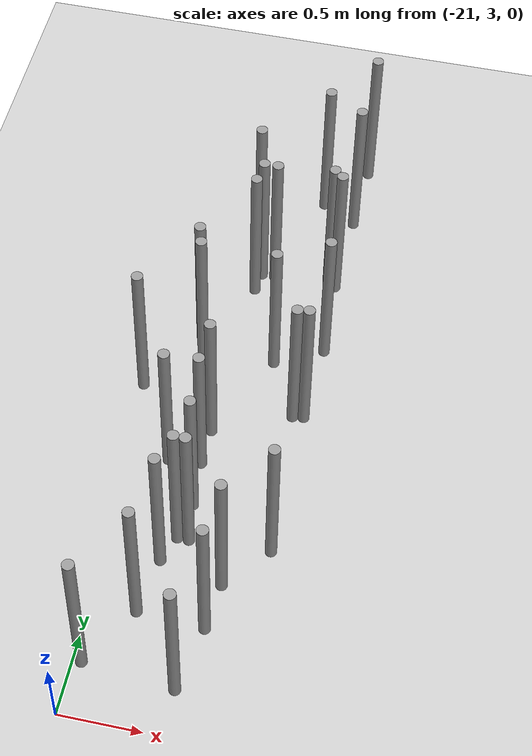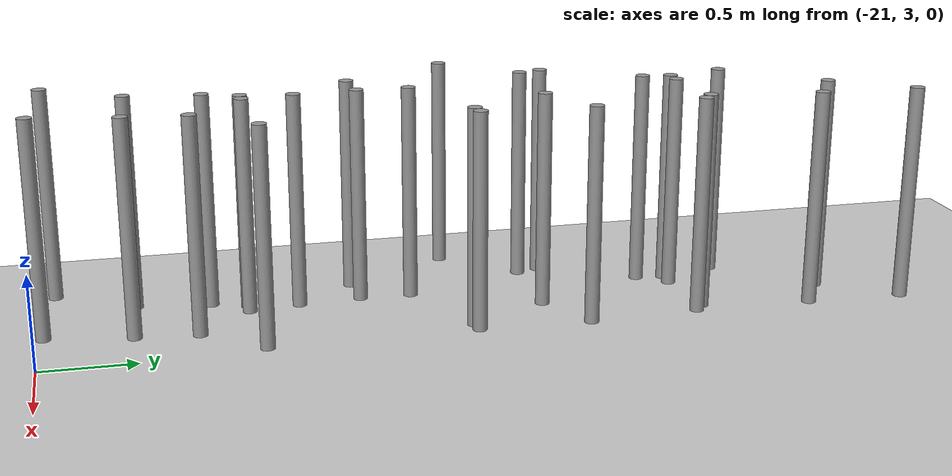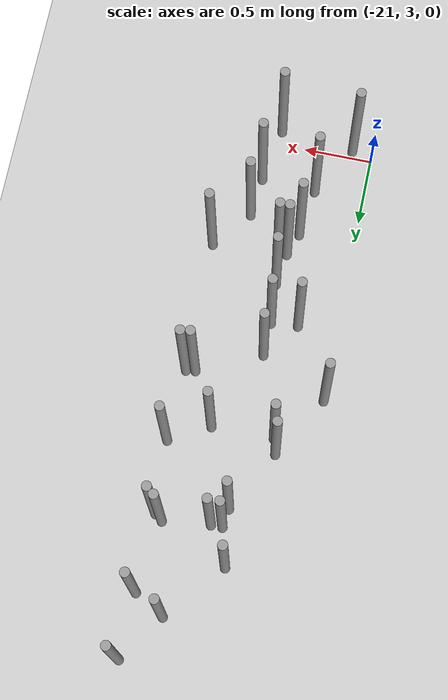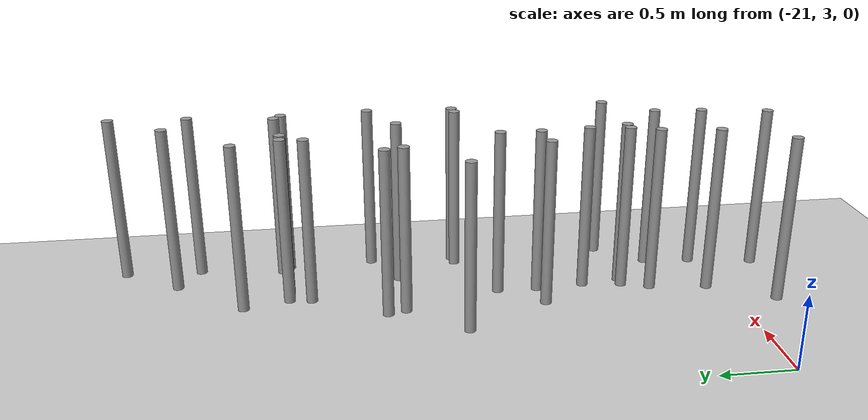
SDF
<sdf version="1.6">
 <world name="default">
  <model name="ground_plane">
   <static>1</static>
   <link name="link">
    <collision name="collision">
     <geometry><plane><normal>0 0 1</normal><size>100 100</size></plane></geometry>
     <surface><friction><ode><mu>100</mu><mu2>50</mu2></ode></friction></surface>
    </collision>
    <visual name="visual">
     <cast_shadows>0</cast_shadows>
     <geometry><plane><normal>0 0 1</normal><size>100 100</size></plane></geometry>
     <material>
      <script><uri>file://media/materials/scripts/gazebo.material</uri><name>Gazebo/Grey</name></script>
     </material>
    </visual>
   </link>
  </model>
  <model name="unit_cylinder_clone_1">
   <pose>-20.0156 6.54621 0.923528 7e-06 4e-06 0.003042</pose>
   <link name="link">
    <inertial>
     <mass>1</mass>
     <inertia><ixx>0.145833</ixx><ixy>0</ixy><ixz>0</ixz><iyy>0.145833</iyy><iyz>0</iyz><izz>0.125</izz></inertia>
    </inertial>
    <collision name="collision">
     <geometry><cylinder><radius>0.0331322</radius><length>1</length></cylinder></geometry>
    </collision>
    <visual name="visual">
     <geometry><cylinder><radius>0.0331322</radius><length>1</length></cylinder></geometry>
     <material>
      <script><name>Gazebo/Grey</name><uri>file://media/materials/scripts/gazebo.material</uri></script>
     </material>
    </visual>
   </link>
  </model>
  <model name="unit_cylinder_clone_3">
   <pose>-20 7.00001 0.923521 -7e-06 4e-06 0.008098</pose>
   <link name="link">
    <inertial>
     <mass>1</mass>
     <inertia><ixx>0.145833</ixx><ixy>0</ixy><ixz>0</ixz><iyy>0.145833</iyy><iyz>0</iyz><izz>0.125</izz></inertia>
    </inertial>
    <collision name="collision">
     <geometry><cylinder><radius>0.0331322</radius><length>1</length></cylinder></geometry>
    </collision>
    <visual name="visual">
     <geometry><cylinder><radius>0.0331322</radius><length>1</length></cylinder></geometry>
     <material>
      <script><name>Gazebo/Grey</name><uri>file://media/materials/scripts/gazebo.material</uri></script>
     </material>
    </visual>
   </link>
  </model>
  <model name="unit_cylinder_clone_4">
   <pose>-20.2258 6.6696 0.923529 -1e-06 2e-06 -0.005396</pose>
   <link name="link">
    <inertial>
     <mass>1</mass>
     <inertia><ixx>0.145833</ixx><ixy>0</ixy><ixz>0</ixz><iyy>0.145833</iyy><iyz>0</iyz><izz>0.125</izz></inertia>
    </inertial>
    <collision name="collision">
     <geometry><cylinder><radius>0.0331322</radius><length>1</length></cylinder></geometry>
    </collision>
    <visual name="visual">
     <geometry><cylinder><radius>0.0331322</radius><length>1</length></cylinder></geometry>
     <material>
      <script><name>Gazebo/Grey</name><uri>file://media/materials/scripts/gazebo.material</uri></script>
     </material>
    </visual>
   </link>
  </model>
  <model name="unit_cylinder_clone_5">
   <pose>-20.0826 6.03994 0.923523 -4e-06 -1e-06 -0.00611</pose>
   <link name="link">
    <inertial>
     <mass>1</mass>
     <inertia><ixx>0.145833</ixx><ixy>0</ixy><ixz>0</ixz><iyy>0.145833</iyy><iyz>0</iyz><izz>0.125</izz></inertia>
    </inertial>
    <collision name="collision">
     <geometry><cylinder><radius>0.0331322</radius><length>1</length></cylinder></geometry>
    </collision>
    <visual name="visual">
     <geometry><cylinder><radius>0.0331322</radius><length>1</length></cylinder></geometry>
     <material>
      <script><name>Gazebo/Grey</name><uri>file://media/materials/scripts/gazebo.material</uri></script>
     </material>
    </visual>
   </link>
  </model>
  <model name="unit_cylinder_clone_7">
   <pose>-20.5665 6.26589 0.92352 2e-06 -9e-06 -0.006885</pose>
   <link name="link">
    <inertial>
     <mass>1</mass>
     <inertia><ixx>0.145833</ixx><ixy>0</ixy><ixz>0</ixz><iyy>0.145833</iyy><iyz>0</iyz><izz>0.125</izz></inertia>
    </inertial>
    <collision name="collision">
     <geometry><cylinder><radius>0.0331322</radius><length>1</length></cylinder></geometry>
    </collision>
    <visual name="visual">
     <geometry><cylinder><radius>0.0331322</radius><length>1</length></cylinder></geometry>
     <material>
      <script><name>Gazebo/Grey</name><uri>file://media/materials/scripts/gazebo.material</uri></script>
     </material>
    </visual>
   </link>
  </model>
  <model name="unit_cylinder_clone_9">
   <pose>-20.4138 6 0.923527 -8e-06 1.1e-05 0.008825</pose>
   <link name="link">
    <inertial>
     <mass>1</mass>
     <inertia><ixx>0.145833</ixx><ixy>0</ixy><ixz>0</ixz><iyy>0.145833</iyy><iyz>0</iyz><izz>0.125</izz></inertia>
    </inertial>
    <collision name="collision">
     <geometry><cylinder><radius>0.0331322</radius><length>1</length></cylinder></geometry>
    </collision>
    <visual name="visual">
     <geometry><cylinder><radius>0.0331322</radius><length>1</length></cylinder></geometry>
     <material>
      <script><name>Gazebo/Grey</name><uri>file://media/materials/scripts/gazebo.material</uri></script>
     </material>
    </visual>
   </link>
  </model>
  <model name="unit_cylinder_clone_10">
   <pose>-20 5.48491 0.923523 1e-06 6e-06 -0.007406</pose>
   <link name="link">
    <inertial>
     <mass>1</mass>
     <inertia><ixx>0.145833</ixx><ixy>0</ixy><ixz>0</ixz><iyy>0.145833</iyy><iyz>0</iyz><izz>0.125</izz></inertia>
    </inertial>
    <collision name="collision">
     <geometry><cylinder><radius>0.0331322</radius><length>1</length></cylinder></geometry>
    </collision>
    <visual name="visual">
     <geometry><cylinder><radius>0.0331322</radius><length>1</length></cylinder></geometry>
     <material>
      <script><name>Gazebo/Grey</name><uri>file://media/materials/scripts/gazebo.material</uri></script>
     </material>
    </visual>
   </link>
  </model>
  <model name="unit_cylinder_clone_12">
   <pose>-20.088 4.96327 0.923527 1.5e-05 1.6e-05 -0.017433</pose>
   <link name="link">
    <inertial>
     <mass>1</mass>
     <inertia><ixx>0.145833</ixx><ixy>0</ixy><ixz>0</ixz><iyy>0.145833</iyy><iyz>0</iyz><izz>0.125</izz></inertia>
    </inertial>
    <collision name="collision">
     <geometry><cylinder><radius>0.0331322</radius><length>1</length></cylinder></geometry>
    </collision>
    <visual name="visual">
     <geometry><cylinder><radius>0.0331322</radius><length>1</length></cylinder></geometry>
     <material>
      <script><name>Gazebo/Grey</name><uri>file://media/materials/scripts/gazebo.material</uri></script>
     </material>
    </visual>
   </link>
  </model>
  <model name="unit_cylinder_clone_13">
   <pose>-20.2783 5.33195 0.923521 -1.1e-05 -4e-06 -0.000239</pose>
   <link name="link">
    <inertial>
     <mass>1</mass>
     <inertia><ixx>0.145833</ixx><ixy>0</ixy><ixz>0</ixz><iyy>0.145833</iyy><iyz>0</iyz><izz>0.125</izz></inertia>
    </inertial>
    <collision name="collision">
     <geometry><cylinder><radius>0.0331322</radius><length>1</length></cylinder></geometry>
    </collision>
    <visual name="visual">
     <geometry><cylinder><radius>0.0331322</radius><length>1</length></cylinder></geometry>
     <material>
      <script><name>Gazebo/Grey</name><uri>file://media/materials/scripts/gazebo.material</uri></script>
     </material>
    </visual>
   </link>
  </model>
  <model name="unit_cylinder_clone_14">
   <pose>-20.4942 6 0.923522 8e-06 -1e-05 -0.007457</pose>
   <link name="link">
    <inertial>
     <mass>1</mass>
     <inertia><ixx>0.145833</ixx><ixy>0</ixy><ixz>0</ixz><iyy>0.145833</iyy><iyz>0</iyz><izz>0.125</izz></inertia>
    </inertial>
    <collision name="collision">
     <geometry><cylinder><radius>0.0331322</radius><length>1</length></cylinder></geometry>
    </collision>
    <visual name="visual">
     <geometry><cylinder><radius>0.0331322</radius><length>1</length></cylinder></geometry>
     <material>
      <script><name>Gazebo/Grey</name><uri>file://media/materials/scripts/gazebo.material</uri></script>
     </material>
    </visual>
   </link>
  </model>
  <model name="unit_cylinder_clone_15">
   <pose>-20.5123 5.86927 0.923526 3e-06 1e-06 0.008954</pose>
   <link name="link">
    <inertial>
     <mass>1</mass>
     <inertia><ixx>0.145833</ixx><ixy>0</ixy><ixz>0</ixz><iyy>0.145833</iyy><iyz>0</iyz><izz>0.125</izz></inertia>
    </inertial>
    <collision name="collision">
     <geometry><cylinder><radius>0.0331322</radius><length>1</length></cylinder></geometry>
    </collision>
    <visual name="visual">
     <geometry><cylinder><radius>0.0331322</radius><length>1</length></cylinder></geometry>
     <material>
      <script><name>Gazebo/Grey</name><uri>file://media/materials/scripts/gazebo.material</uri></script>
     </material>
    </visual>
   </link>
  </model>
  <model name="unit_cylinder_clone_16">
   <pose>-20.0306 5.99886 0.923527 2e-06 -6e-06 0.00964</pose>
   <link name="link">
    <inertial>
     <mass>1</mass>
     <inertia><ixx>0.145833</ixx><ixy>0</ixy><ixz>0</ixz><iyy>0.145833</iyy><iyz>0</iyz><izz>0.125</izz></inertia>
    </inertial>
    <collision name="collision">
     <geometry><cylinder><radius>0.0331322</radius><length>1</length></cylinder></geometry>
    </collision>
    <visual name="visual">
     <geometry><cylinder><radius>0.0331322</radius><length>1</length></cylinder></geometry>
     <material>
      <script><name>Gazebo/Grey</name><uri>file://media/materials/scripts/gazebo.material</uri></script>
     </material>
    </visual>
   </link>
  </model>
  <model name="unit_cylinder_clone_19">
   <pose>-20.0222 4.97245 0.923522 -9e-06 1e-05 -0.00349</pose>
   <link name="link">
    <inertial>
     <mass>1</mass>
     <inertia><ixx>0.145833</ixx><ixy>0</ixy><ixz>0</ixz><iyy>0.145833</iyy><iyz>0</iyz><izz>0.125</izz></inertia>
    </inertial>
    <collision name="collision">
     <geometry><cylinder><radius>0.0331322</radius><length>1</length></cylinder></geometry>
    </collision>
    <visual name="visual">
     <geometry><cylinder><radius>0.0331322</radius><length>1</length></cylinder></geometry>
     <material>
      <script><name>Gazebo/Grey</name><uri>file://media/materials/scripts/gazebo.material</uri></script>
     </material>
    </visual>
   </link>
  </model>
  <model name="unit_cylinder_clone_24">
   <pose>-20.5286 4.75878 0.923529 4e-06 -1.2e-05 -0.00293</pose>
   <link name="link">
    <inertial>
     <mass>1</mass>
     <inertia><ixx>0.145833</ixx><ixy>0</ixy><ixz>0</ixz><iyy>0.145833</iyy><iyz>0</iyz><izz>0.125</izz></inertia>
    </inertial>
    <collision name="collision">
     <geometry><cylinder><radius>0.0331322</radius><length>1</length></cylinder></geometry>
    </collision>
    <visual name="visual">
     <geometry><cylinder><radius>0.0331322</radius><length>1</length></cylinder></geometry>
     <material>
      <script><name>Gazebo/Grey</name><uri>file://media/materials/scripts/gazebo.material</uri></script>
     </material>
    </visual>
   </link>
  </model>
  <model name="unit_cylinder_clone_25">
   <pose>-20.714 5.32837 0.923525 9e-06 -1.5e-05 -0.006506</pose>
   <link name="link">
    <inertial>
     <mass>1</mass>
     <inertia><ixx>0.145833</ixx><ixy>0</ixy><ixz>0</ixz><iyy>0.145833</iyy><iyz>0</iyz><izz>0.125</izz></inertia>
    </inertial>
    <collision name="collision">
     <geometry><cylinder><radius>0.0331322</radius><length>1</length></cylinder></geometry>
    </collision>
    <visual name="visual">
     <geometry><cylinder><radius>0.0331322</radius><length>1</length></cylinder></geometry>
     <material>
      <script><name>Gazebo/Grey</name><uri>file://media/materials/scripts/gazebo.material</uri></script>
     </material>
    </visual>
   </link>
  </model>
  <model name="unit_cylinder_clone_26">
   <pose>-20.7453 5.43543 0.923524 9e-06 7e-06 0.000652</pose>
   <link name="link">
    <inertial>
     <mass>1</mass>
     <inertia><ixx>0.145833</ixx><ixy>0</ixy><ixz>0</ixz><iyy>0.145833</iyy><iyz>0</iyz><izz>0.125</izz></inertia>
    </inertial>
    <collision name="collision">
     <geometry><cylinder><radius>0.0331322</radius><length>1</length></cylinder></geometry>
    </collision>
    <visual name="visual">
     <geometry><cylinder><radius>0.0331322</radius><length>1</length></cylinder></geometry>
     <material>
      <script><name>Gazebo/Grey</name><uri>file://media/materials/scripts/gazebo.material</uri></script>
     </material>
    </visual>
   </link>
  </model>
  <model name="unit_cylinder_clone_27">
   <pose>-21 5 0.923526 9e-06 5e-06 0.004321</pose>
   <link name="link">
    <inertial>
     <mass>1</mass>
     <inertia><ixx>0.145833</ixx><ixy>0</ixy><ixz>0</ixz><iyy>0.145833</iyy><iyz>0</iyz><izz>0.125</izz></inertia>
    </inertial>
    <collision name="collision">
     <geometry><cylinder><radius>0.0331322</radius><length>1</length></cylinder></geometry>
    </collision>
    <visual name="visual">
     <geometry><cylinder><radius>0.0331322</radius><length>1</length></cylinder></geometry>
     <material>
      <script><name>Gazebo/Grey</name><uri>file://media/materials/scripts/gazebo.material</uri></script>
     </material>
    </visual>
   </link>
  </model>
  <model name="unit_cylinder_clone_28">
   <pose>-20.0164 4.02865 0.92353 1.1e-05 -1.5e-05 -0.000559</pose>
   <link name="link">
    <inertial>
     <mass>1</mass>
     <inertia><ixx>0.145833</ixx><ixy>0</ixy><ixz>0</ixz><iyy>0.145833</iyy><iyz>0</iyz><izz>0.125</izz></inertia>
    </inertial>
    <collision name="collision">
     <geometry><cylinder><radius>0.0331322</radius><length>1</length></cylinder></geometry>
    </collision>
    <visual name="visual">
     <geometry><cylinder><radius>0.0331322</radius><length>1</length></cylinder></geometry>
     <material>
      <script><name>Gazebo/Grey</name><uri>file://media/materials/scripts/gazebo.material</uri></script>
     </material>
    </visual>
   </link>
  </model>
  <model name="unit_cylinder_clone_31">
   <pose>-20.5344 4.52127 0.923527 -1.3e-05 1.2e-05 -0.005392</pose>
   <link name="link">
    <inertial>
     <mass>1</mass>
     <inertia><ixx>0.145833</ixx><ixy>0</ixy><ixz>0</ixz><iyy>0.145833</iyy><iyz>0</iyz><izz>0.125</izz></inertia>
    </inertial>
    <collision name="collision">
     <geometry><cylinder><radius>0.0331322</radius><length>1</length></cylinder></geometry>
    </collision>
    <visual name="visual">
     <geometry><cylinder><radius>0.0331322</radius><length>1</length></cylinder></geometry>
     <material>
      <script><name>Gazebo/Grey</name><uri>file://media/materials/scripts/gazebo.material</uri></script>
     </material>
    </visual>
   </link>
  </model>
  <model name="unit_cylinder_clone_32">
   <pose>-20.546 4.00004 0.923522 3e-06 2e-06 -0.00091</pose>
   <link name="link">
    <inertial>
     <mass>1</mass>
     <inertia><ixx>0.145833</ixx><ixy>0</ixy><ixz>0</ixz><iyy>0.145833</iyy><iyz>0</iyz><izz>0.125</izz></inertia>
    </inertial>
    <collision name="collision">
     <geometry><cylinder><radius>0.0331322</radius><length>1</length></cylinder></geometry>
    </collision>
    <visual name="visual">
     <geometry><cylinder><radius>0.0331322</radius><length>1</length></cylinder></geometry>
     <material>
      <script><name>Gazebo/Grey</name><uri>file://media/materials/scripts/gazebo.material</uri></script>
     </material>
    </visual>
   </link>
  </model>
  <model name="unit_cylinder_clone_33">
   <pose>-20.4797 3.99999 0.923528 -1e-06 7e-06 0.005265</pose>
   <link name="link">
    <inertial>
     <mass>1</mass>
     <inertia><ixx>0.145833</ixx><ixy>0</ixy><ixz>0</ixz><iyy>0.145833</iyy><iyz>0</iyz><izz>0.125</izz></inertia>
    </inertial>
    <collision name="collision">
     <geometry><cylinder><radius>0.0331322</radius><length>1</length></cylinder></geometry>
    </collision>
    <visual name="visual">
     <geometry><cylinder><radius>0.0331322</radius><length>1</length></cylinder></geometry>
     <material>
      <script><name>Gazebo/Grey</name><uri>file://media/materials/scripts/gazebo.material</uri></script>
     </material>
    </visual>
   </link>
  </model>
  <model name="unit_cylinder_clone_34">
   <pose>-20.7236 4.50514 0.923528 0 -0 0.001478</pose>
   <link name="link">
    <inertial>
     <mass>1</mass>
     <inertia><ixx>0.145833</ixx><ixy>0</ixy><ixz>0</ixz><iyy>0.145833</iyy><iyz>0</iyz><izz>0.125</izz></inertia>
    </inertial>
    <collision name="collision">
     <geometry><cylinder><radius>0.0331322</radius><length>1</length></cylinder></geometry>
    </collision>
    <visual name="visual">
     <geometry><cylinder><radius>0.0331322</radius><length>1</length></cylinder></geometry>
     <material>
      <script><name>Gazebo/Grey</name><uri>file://media/materials/scripts/gazebo.material</uri></script>
     </material>
    </visual>
   </link>
  </model>
  <model name="unit_cylinder_clone_35">
   <pose>-20.5133 4.2334 0.923521 5e-06 1e-05 0.003381</pose>
   <link name="link">
    <inertial>
     <mass>1</mass>
     <inertia><ixx>0.145833</ixx><ixy>0</ixy><ixz>0</ixz><iyy>0.145833</iyy><iyz>0</iyz><izz>0.125</izz></inertia>
    </inertial>
    <collision name="collision">
     <geometry><cylinder><radius>0.0331322</radius><length>1</length></cylinder></geometry>
    </collision>
    <visual name="visual">
     <geometry><cylinder><radius>0.0331322</radius><length>1</length></cylinder></geometry>
     <material>
      <script><name>Gazebo/Grey</name><uri>file://media/materials/scripts/gazebo.material</uri></script>
     </material>
    </visual>
   </link>
  </model>
  <model name="unit_cylinder_clone_36">
   <pose>-20.2362 3.75689 0.923521 1e-05 -2e-06 -0.01405</pose>
   <link name="link">
    <inertial>
     <mass>1</mass>
     <inertia><ixx>0.145833</ixx><ixy>0</ixy><ixz>0</ixz><iyy>0.145833</iyy><iyz>0</iyz><izz>0.125</izz></inertia>
    </inertial>
    <collision name="collision">
     <geometry><cylinder><radius>0.0331322</radius><length>1</length></cylinder></geometry>
    </collision>
    <visual name="visual">
     <geometry><cylinder><radius>0.0331322</radius><length>1</length></cylinder></geometry>
     <material>
      <script><name>Gazebo/Grey</name><uri>file://media/materials/scripts/gazebo.material</uri></script>
     </material>
    </visual>
   </link>
  </model>
  <model name="unit_cylinder_clone_37">
   <pose>-20.6038 3.83669 0.923523 -1.2e-05 6e-06 -0.024287</pose>
   <link name="link">
    <inertial>
     <mass>1</mass>
     <inertia><ixx>0.145833</ixx><ixy>0</ixy><ixz>0</ixz><iyy>0.145833</iyy><iyz>0</iyz><izz>0.125</izz></inertia>
    </inertial>
    <collision name="collision">
     <geometry><cylinder><radius>0.0331322</radius><length>1</length></cylinder></geometry>
    </collision>
    <visual name="visual">
     <geometry><cylinder><radius>0.0331322</radius><length>1</length></cylinder></geometry>
     <material>
      <script><name>Gazebo/Grey</name><uri>file://media/materials/scripts/gazebo.material</uri></script>
     </material>
    </visual>
   </link>
  </model>
  <model name="unit_cylinder_clone_38">
   <pose>-20.2643 3.47311 0.923528 5e-06 -4e-06 -0.012806</pose>
   <link name="link">
    <inertial>
     <mass>1</mass>
     <inertia><ixx>0.145833</ixx><ixy>0</ixy><ixz>0</ixz><iyy>0.145833</iyy><iyz>0</iyz><izz>0.125</izz></inertia>
    </inertial>
    <collision name="collision">
     <geometry><cylinder><radius>0.0331322</radius><length>1</length></cylinder></geometry>
    </collision>
    <visual name="visual">
     <geometry><cylinder><radius>0.0331322</radius><length>1</length></cylinder></geometry>
     <material>
      <script><name>Gazebo/Grey</name><uri>file://media/materials/scripts/gazebo.material</uri></script>
     </material>
    </visual>
   </link>
  </model>
  <model name="unit_cylinder_clone_39">
   <pose>-20.6498 3.49376 0.923529 -2e-06 -1.1e-05 -0.030125</pose>
   <link name="link">
    <inertial>
     <mass>1</mass>
     <inertia><ixx>0.145833</ixx><ixy>0</ixy><ixz>0</ixz><iyy>0.145833</iyy><iyz>0</iyz><izz>0.125</izz></inertia>
    </inertial>
    <collision name="collision">
     <geometry><cylinder><radius>0.0331322</radius><length>1</length></cylinder></geometry>
    </collision>
    <visual name="visual">
     <geometry><cylinder><radius>0.0331322</radius><length>1</length></cylinder></geometry>
     <material>
      <script><name>Gazebo/Grey</name><uri>file://media/materials/scripts/gazebo.material</uri></script>
     </material>
    </visual>
   </link>
  </model>
  <model name="unit_cylinder_clone_40">
   <pose>-20.3333 3.08284 0.923527 -1e-06 1e-06 -0.015894</pose>
   <link name="link">
    <inertial>
     <mass>1</mass>
     <inertia><ixx>0.145833</ixx><ixy>0</ixy><ixz>0</ixz><iyy>0.145833</iyy><iyz>0</iyz><izz>0.125</izz></inertia>
    </inertial>
    <collision name="collision">
     <geometry><cylinder><radius>0.0331322</radius><length>1</length></cylinder></geometry>
    </collision>
    <visual name="visual">
     <geometry><cylinder><radius>0.0331322</radius><length>1</length></cylinder></geometry>
     <material>
      <script><name>Gazebo/Grey</name><uri>file://media/materials/scripts/gazebo.material</uri></script>
     </material>
    </visual>
   </link>
  </model>
  <model name="unit_cylinder_clone_41">
   <pose>-20.8585 3.13299 0.923524 2.2e-05 -6e-06 -0.013295</pose>
   <link name="link">
    <inertial>
     <mass>1</mass>
     <inertia><ixx>0.145833</ixx><ixy>0</ixy><ixz>0</ixz><iyy>0.145833</iyy><iyz>0</iyz><izz>0.125</izz></inertia>
    </inertial>
    <collision name="collision">
     <geometry><cylinder><radius>0.0331322</radius><length>1</length></cylinder></geometry>
    </collision>
    <visual name="visual">
     <geometry><cylinder><radius>0.0331322</radius><length>1</length></cylinder></geometry>
     <material>
      <script><name>Gazebo/Grey</name><uri>file://media/materials/scripts/gazebo.material</uri></script>
     </material>
    </visual>
   </link>
  </model>
 </world>
</sdf>
